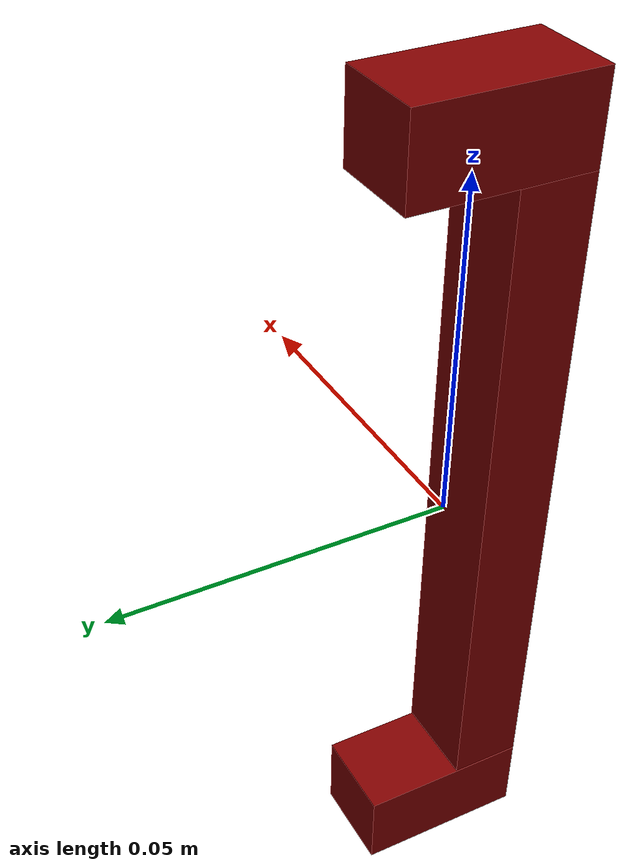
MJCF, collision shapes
<?xml version='1.0' encoding='UTF-8'?>
<mujoco model="model">
  <option timestep="0.002" gravity="0.0 0.0 -9.81"/>
  <compiler angle="radian"/>
  <asset>
    <mesh file="visuals/CabinetHandle039.obj" name="CabinetHandle039_vis"/>
    <texture file="visuals/T_BC001.png" name="tex" type="2d"/>
    <material name="mat" rgba="1 1 1 1.0" texture="tex" shininess="0.4472135901451111" specular="0.3103448502657381"/>
  </asset>
  <default>
    <default class="visual">
      <geom conaffinity="0" contype="0" group="1" type="mesh"/>
    </default>
    <default class="collision">
      <geom group="0" rgba="0.5 0 0 0.5" density="1.0" solref="0.004 1" solimp="0.998 0.998 0.001"/>
    </default>
    <default class="spawn">
      <geom group="0" rgba="1 1 1 0.5" contype="0" conaffinity="0"/>
      <site group="0" rgba="1 1 1 0.5"/>
    </default>
    <default class="region">
      <geom group="1" conaffinity="0" contype="0" rgba="0 1 0 0" mass="0"/>
    </default>
  </default>
  <worldbody>
    <body>
      <body name="object">
        <geom mesh="CabinetHandle039_vis" type="mesh" solimp="0.998 0.998 0.001" solref="0.001 1" friction="0.95 0.3 0.1" class="visual" material="mat"/>
        <geom type="box" pos="0.00010934985766652972 -0.007466495502740145 7.435523002641276e-05" size="0.00696534663438797 0.0054173823446035385 0.050145819783210754" quat="1.0 0.0 0.0 0.0" class="collision"/>
        <geom type="box" pos="0.00010934985766652972 8.427305874647573e-05 0.056465376168489456" size="0.00696534663438797 0.012968151830136776 0.006208379752933979" quat="1.0 0.0 0.0 0.0" class="collision"/>
        <geom type="box" pos="0.00010934985766652972 8.427305874647573e-05 -0.05652201548218727" size="0.00696534663438797 0.012968151830136776 0.006208379752933979" quat="1.0 0.0 0.0 0.0" class="collision"/>
        <geom class="region" name="reg_main" type="box" pos="1.1641532182693481e-10 0.0 0.0" size="0.007791194435209036 0.013818485498428346 0.06366401708126068"/>
      </body>
    </body>
  </worldbody>
  <actuator/>
</mujoco>
